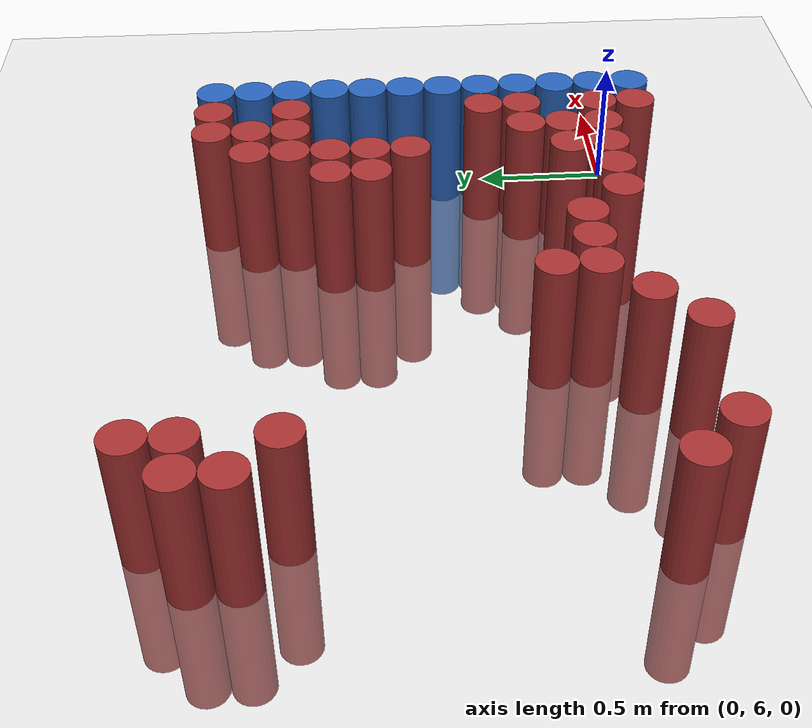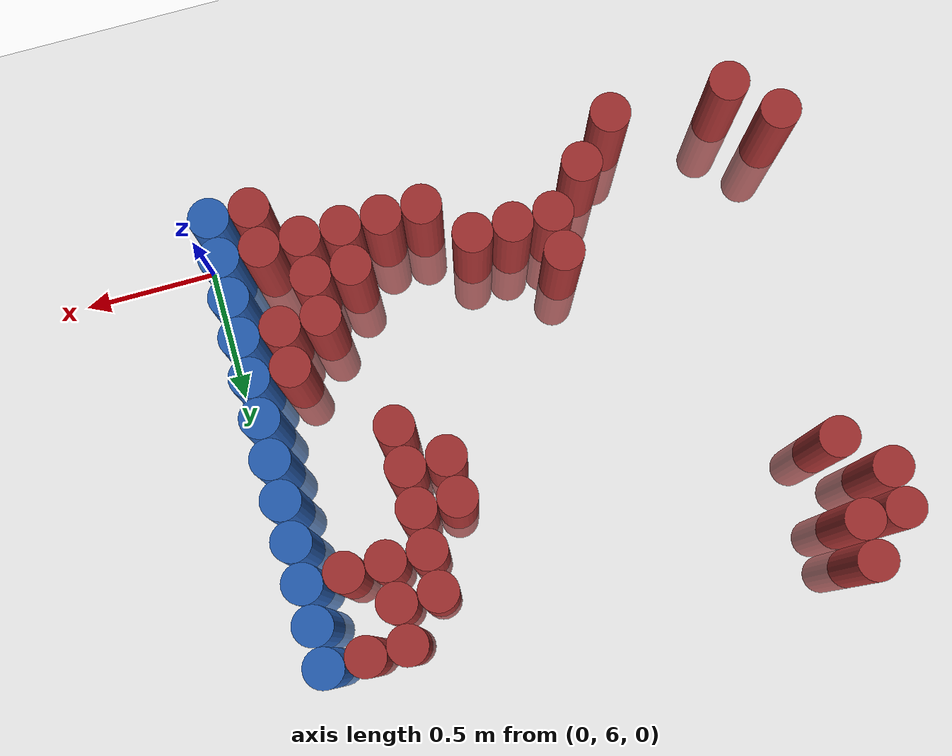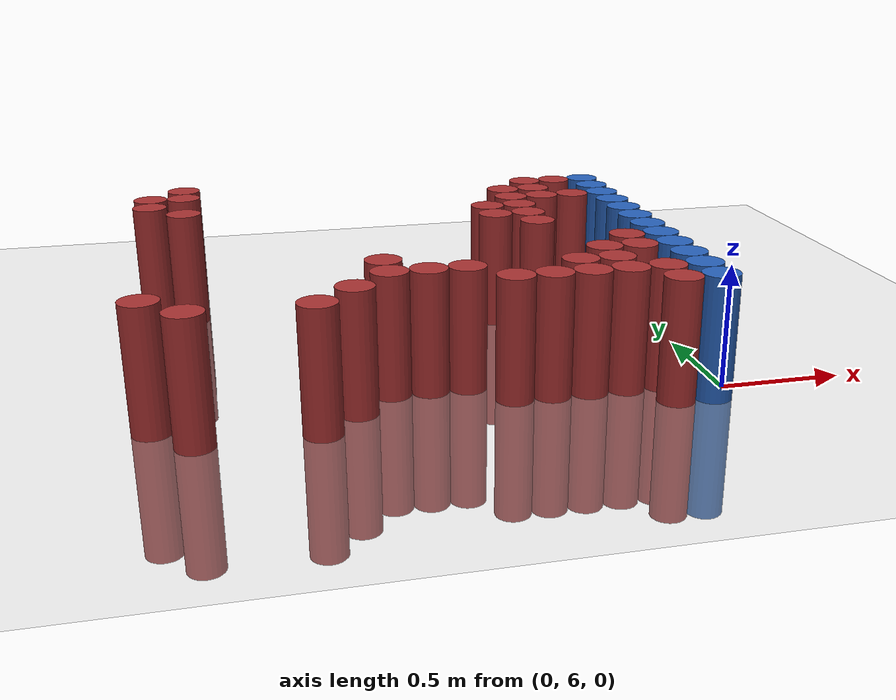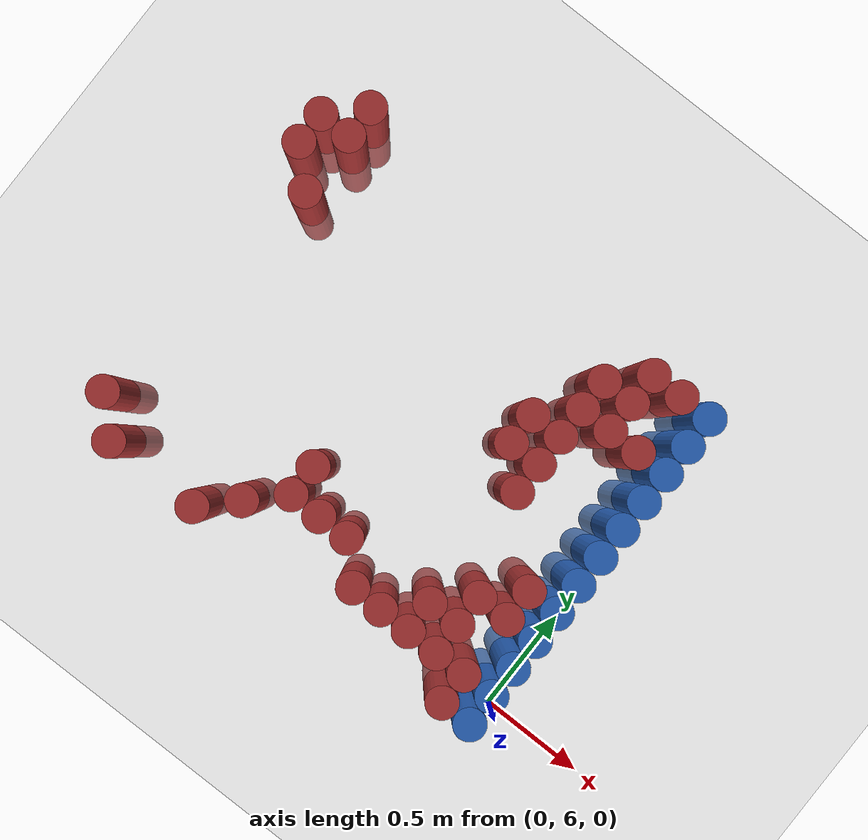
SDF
<sdf version="1.6">
 <world name="default">
  <model name="ground_plane">
   <static>1</static>
   <link name="link">
    <collision name="collision">
     <geometry><plane><normal>0 0 1</normal><size>100 100</size></plane></geometry>
     <surface><friction><ode><mu>100</mu><mu2>50</mu2></ode></friction></surface>
    </collision>
    <visual name="visual">
     <cast_shadows>0</cast_shadows>
     <geometry><plane><normal>0 0 1</normal><size>100 100</size></plane></geometry>
     <material>
      <script><uri>file://media/materials/scripts/gazebo.material</uri><name>Gazebo/Grey</name></script>
     </material>
    </visual>
   </link>
  </model>
  <model name="unit_cylinder_217">
   <static>1</static>
   <pose>-2.175000 6.075000 0.000000 0.000000 0.000000 0.000000</pose>
   <link name="link">
    <inertial>
     <mass>1</mass>
     <inertia><ixx>0.145833</ixx><ixy>0</ixy><ixz>0</ixz><iyy>0.145833</iyy><iyz>0</iyz><izz>0.125</izz></inertia>
    </inertial>
    <collision name="collision">
     <geometry><cylinder><radius>0.075000</radius><length>1</length></cylinder></geometry>
    </collision>
    <visual name="visual">
     <geometry><cylinder><radius>0.075000</radius><length>1</length></cylinder></geometry>
     <material>
      <ambient>0.648000 0.192000 0.192000 1</ambient>
      <diffuse>0.648000 0.192000 0.192000 1</diffuse>
     </material>
     <material>
      <script><name>Gazebo/Grey</name><uri>file://media/materials/scripts/gazebo.material</uri></script>
     </material>
    </visual>
   </link>
  </model>
  <model name="unit_cylinder_218">
   <static>1</static>
   <pose>-2.175000 7.425000 0.000000 0.000000 0.000000 0.000000</pose>
   <link name="link">
    <inertial>
     <mass>1</mass>
     <inertia><ixx>0.145833</ixx><ixy>0</ixy><ixz>0</ixz><iyy>0.145833</iyy><iyz>0</iyz><izz>0.125</izz></inertia>
    </inertial>
    <collision name="collision">
     <geometry><cylinder><radius>0.075000</radius><length>1</length></cylinder></geometry>
    </collision>
    <visual name="visual">
     <geometry><cylinder><radius>0.075000</radius><length>1</length></cylinder></geometry>
     <material>
      <ambient>0.648000 0.192000 0.192000 1</ambient>
      <diffuse>0.648000 0.192000 0.192000 1</diffuse>
     </material>
     <material>
      <script><name>Gazebo/Grey</name><uri>file://media/materials/scripts/gazebo.material</uri></script>
     </material>
    </visual>
   </link>
  </model>
  <model name="unit_cylinder_219">
   <static>1</static>
   <pose>-2.175000 7.575000 0.000000 0.000000 0.000000 0.000000</pose>
   <link name="link">
    <inertial>
     <mass>1</mass>
     <inertia><ixx>0.145833</ixx><ixy>0</ixy><ixz>0</ixz><iyy>0.145833</iyy><iyz>0</iyz><izz>0.125</izz></inertia>
    </inertial>
    <collision name="collision">
     <geometry><cylinder><radius>0.075000</radius><length>1</length></cylinder></geometry>
    </collision>
    <visual name="visual">
     <geometry><cylinder><radius>0.075000</radius><length>1</length></cylinder></geometry>
     <material>
      <ambient>0.648000 0.192000 0.192000 1</ambient>
      <diffuse>0.648000 0.192000 0.192000 1</diffuse>
     </material>
     <material>
      <script><name>Gazebo/Grey</name><uri>file://media/materials/scripts/gazebo.material</uri></script>
     </material>
    </visual>
   </link>
  </model>
  <model name="unit_cylinder_230">
   <static>1</static>
   <pose>-2.025000 5.925000 0.000000 0.000000 0.000000 0.000000</pose>
   <link name="link">
    <inertial>
     <mass>1</mass>
     <inertia><ixx>0.145833</ixx><ixy>0</ixy><ixz>0</ixz><iyy>0.145833</iyy><iyz>0</iyz><izz>0.125</izz></inertia>
    </inertial>
    <collision name="collision">
     <geometry><cylinder><radius>0.075000</radius><length>1</length></cylinder></geometry>
    </collision>
    <visual name="visual">
     <geometry><cylinder><radius>0.075000</radius><length>1</length></cylinder></geometry>
     <material>
      <ambient>0.648000 0.192000 0.192000 1</ambient>
      <diffuse>0.648000 0.192000 0.192000 1</diffuse>
     </material>
     <material>
      <script><name>Gazebo/Grey</name><uri>file://media/materials/scripts/gazebo.material</uri></script>
     </material>
    </visual>
   </link>
  </model>
  <model name="unit_cylinder_231">
   <static>1</static>
   <pose>-2.025000 7.275000 0.000000 0.000000 0.000000 0.000000</pose>
   <link name="link">
    <inertial>
     <mass>1</mass>
     <inertia><ixx>0.145833</ixx><ixy>0</ixy><ixz>0</ixz><iyy>0.145833</iyy><iyz>0</iyz><izz>0.125</izz></inertia>
    </inertial>
    <collision name="collision">
     <geometry><cylinder><radius>0.075000</radius><length>1</length></cylinder></geometry>
    </collision>
    <visual name="visual">
     <geometry><cylinder><radius>0.075000</radius><length>1</length></cylinder></geometry>
     <material>
      <ambient>0.648000 0.192000 0.192000 1</ambient>
      <diffuse>0.648000 0.192000 0.192000 1</diffuse>
     </material>
     <material>
      <script><name>Gazebo/Grey</name><uri>file://media/materials/scripts/gazebo.material</uri></script>
     </material>
    </visual>
   </link>
  </model>
  <model name="unit_cylinder_232">
   <static>1</static>
   <pose>-2.025000 7.575000 0.000000 0.000000 0.000000 0.000000</pose>
   <link name="link">
    <inertial>
     <mass>1</mass>
     <inertia><ixx>0.145833</ixx><ixy>0</ixy><ixz>0</ixz><iyy>0.145833</iyy><iyz>0</iyz><izz>0.125</izz></inertia>
    </inertial>
    <collision name="collision">
     <geometry><cylinder><radius>0.075000</radius><length>1</length></cylinder></geometry>
    </collision>
    <visual name="visual">
     <geometry><cylinder><radius>0.075000</radius><length>1</length></cylinder></geometry>
     <material>
      <ambient>0.648000 0.192000 0.192000 1</ambient>
      <diffuse>0.648000 0.192000 0.192000 1</diffuse>
     </material>
     <material>
      <script><name>Gazebo/Grey</name><uri>file://media/materials/scripts/gazebo.material</uri></script>
     </material>
    </visual>
   </link>
  </model>
  <model name="unit_cylinder_233">
   <static>1</static>
   <pose>-2.025000 7.725000 0.000000 0.000000 0.000000 0.000000</pose>
   <link name="link">
    <inertial>
     <mass>1</mass>
     <inertia><ixx>0.145833</ixx><ixy>0</ixy><ixz>0</ixz><iyy>0.145833</iyy><iyz>0</iyz><izz>0.125</izz></inertia>
    </inertial>
    <collision name="collision">
     <geometry><cylinder><radius>0.075000</radius><length>1</length></cylinder></geometry>
    </collision>
    <visual name="visual">
     <geometry><cylinder><radius>0.075000</radius><length>1</length></cylinder></geometry>
     <material>
      <ambient>0.648000 0.192000 0.192000 1</ambient>
      <diffuse>0.648000 0.192000 0.192000 1</diffuse>
     </material>
     <material>
      <script><name>Gazebo/Grey</name><uri>file://media/materials/scripts/gazebo.material</uri></script>
     </material>
    </visual>
   </link>
  </model>
  <model name="unit_cylinder_246">
   <static>1</static>
   <pose>-1.575000 5.925000 0.000000 0.000000 0.000000 0.000000</pose>
   <link name="link">
    <inertial>
     <mass>1</mass>
     <inertia><ixx>0.145833</ixx><ixy>0</ixy><ixz>0</ixz><iyy>0.145833</iyy><iyz>0</iyz><izz>0.125</izz></inertia>
    </inertial>
    <collision name="collision">
     <geometry><cylinder><radius>0.075000</radius><length>1</length></cylinder></geometry>
    </collision>
    <visual name="visual">
     <geometry><cylinder><radius>0.075000</radius><length>1</length></cylinder></geometry>
     <material>
      <ambient>0.648000 0.192000 0.192000 1</ambient>
      <diffuse>0.648000 0.192000 0.192000 1</diffuse>
     </material>
     <material>
      <script><name>Gazebo/Grey</name><uri>file://media/materials/scripts/gazebo.material</uri></script>
     </material>
    </visual>
   </link>
  </model>
  <model name="unit_cylinder_248">
   <static>1</static>
   <pose>-1.425000 6.075000 0.000000 0.000000 0.000000 0.000000</pose>
   <link name="link">
    <inertial>
     <mass>1</mass>
     <inertia><ixx>0.145833</ixx><ixy>0</ixy><ixz>0</ixz><iyy>0.145833</iyy><iyz>0</iyz><izz>0.125</izz></inertia>
    </inertial>
    <collision name="collision">
     <geometry><cylinder><radius>0.075000</radius><length>1</length></cylinder></geometry>
    </collision>
    <visual name="visual">
     <geometry><cylinder><radius>0.075000</radius><length>1</length></cylinder></geometry>
     <material>
      <ambient>0.648000 0.192000 0.192000 1</ambient>
      <diffuse>0.648000 0.192000 0.192000 1</diffuse>
     </material>
     <material>
      <script><name>Gazebo/Grey</name><uri>file://media/materials/scripts/gazebo.material</uri></script>
     </material>
    </visual>
   </link>
  </model>
  <model name="unit_cylinder_250">
   <static>1</static>
   <pose>-1.275000 6.225000 0.000000 0.000000 0.000000 0.000000</pose>
   <link name="link">
    <inertial>
     <mass>1</mass>
     <inertia><ixx>0.145833</ixx><ixy>0</ixy><ixz>0</ixz><iyy>0.145833</iyy><iyz>0</iyz><izz>0.125</izz></inertia>
    </inertial>
    <collision name="collision">
     <geometry><cylinder><radius>0.075000</radius><length>1</length></cylinder></geometry>
    </collision>
    <visual name="visual">
     <geometry><cylinder><radius>0.075000</radius><length>1</length></cylinder></geometry>
     <material>
      <ambient>0.648000 0.192000 0.192000 1</ambient>
      <diffuse>0.648000 0.192000 0.192000 1</diffuse>
     </material>
     <material>
      <script><name>Gazebo/Grey</name><uri>file://media/materials/scripts/gazebo.material</uri></script>
     </material>
    </visual>
   </link>
  </model>
  <model name="unit_cylinder_251">
   <static>1</static>
   <pose>-1.275000 6.375000 0.000000 0.000000 0.000000 0.000000</pose>
   <link name="link">
    <inertial>
     <mass>1</mass>
     <inertia><ixx>0.145833</ixx><ixy>0</ixy><ixz>0</ixz><iyy>0.145833</iyy><iyz>0</iyz><izz>0.125</izz></inertia>
    </inertial>
    <collision name="collision">
     <geometry><cylinder><radius>0.075000</radius><length>1</length></cylinder></geometry>
    </collision>
    <visual name="visual">
     <geometry><cylinder><radius>0.075000</radius><length>1</length></cylinder></geometry>
     <material>
      <ambient>0.648000 0.192000 0.192000 1</ambient>
      <diffuse>0.648000 0.192000 0.192000 1</diffuse>
     </material>
     <material>
      <script><name>Gazebo/Grey</name><uri>file://media/materials/scripts/gazebo.material</uri></script>
     </material>
    </visual>
   </link>
  </model>
  <model name="unit_cylinder_252">
   <static>1</static>
   <pose>-1.125000 6.225000 0.000000 0.000000 0.000000 0.000000</pose>
   <link name="link">
    <inertial>
     <mass>1</mass>
     <inertia><ixx>0.145833</ixx><ixy>0</ixy><ixz>0</ixz><iyy>0.145833</iyy><iyz>0</iyz><izz>0.125</izz></inertia>
    </inertial>
    <collision name="collision">
     <geometry><cylinder><radius>0.075000</radius><length>1</length></cylinder></geometry>
    </collision>
    <visual name="visual">
     <geometry><cylinder><radius>0.075000</radius><length>1</length></cylinder></geometry>
     <material>
      <ambient>0.648000 0.192000 0.192000 1</ambient>
      <diffuse>0.648000 0.192000 0.192000 1</diffuse>
     </material>
     <material>
      <script><name>Gazebo/Grey</name><uri>file://media/materials/scripts/gazebo.material</uri></script>
     </material>
    </visual>
   </link>
  </model>
  <model name="unit_cylinder_253">
   <static>1</static>
   <pose>-0.975000 6.225000 0.000000 0.000000 0.000000 0.000000</pose>
   <link name="link">
    <inertial>
     <mass>1</mass>
     <inertia><ixx>0.145833</ixx><ixy>0</ixy><ixz>0</ixz><iyy>0.145833</iyy><iyz>0</iyz><izz>0.125</izz></inertia>
    </inertial>
    <collision name="collision">
     <geometry><cylinder><radius>0.075000</radius><length>1</length></cylinder></geometry>
    </collision>
    <visual name="visual">
     <geometry><cylinder><radius>0.075000</radius><length>1</length></cylinder></geometry>
     <material>
      <ambient>0.648000 0.192000 0.192000 1</ambient>
      <diffuse>0.648000 0.192000 0.192000 1</diffuse>
     </material>
     <material>
      <script><name>Gazebo/Grey</name><uri>file://media/materials/scripts/gazebo.material</uri></script>
     </material>
    </visual>
   </link>
  </model>
  <model name="unit_cylinder_256">
   <static>1</static>
   <pose>-0.825000 6.075000 0.000000 0.000000 0.000000 0.000000</pose>
   <link name="link">
    <inertial>
     <mass>1</mass>
     <inertia><ixx>0.145833</ixx><ixy>0</ixy><ixz>0</ixz><iyy>0.145833</iyy><iyz>0</iyz><izz>0.125</izz></inertia>
    </inertial>
    <collision name="collision">
     <geometry><cylinder><radius>0.075000</radius><length>1</length></cylinder></geometry>
    </collision>
    <visual name="visual">
     <geometry><cylinder><radius>0.075000</radius><length>1</length></cylinder></geometry>
     <material>
      <ambient>0.648000 0.192000 0.192000 1</ambient>
      <diffuse>0.648000 0.192000 0.192000 1</diffuse>
     </material>
     <material>
      <script><name>Gazebo/Grey</name><uri>file://media/materials/scripts/gazebo.material</uri></script>
     </material>
    </visual>
   </link>
  </model>
  <model name="unit_cylinder_259">
   <static>1</static>
   <pose>-0.675000 6.075000 0.000000 0.000000 0.000000 0.000000</pose>
   <link name="link">
    <inertial>
     <mass>1</mass>
     <inertia><ixx>0.145833</ixx><ixy>0</ixy><ixz>0</ixz><iyy>0.145833</iyy><iyz>0</iyz><izz>0.125</izz></inertia>
    </inertial>
    <collision name="collision">
     <geometry><cylinder><radius>0.075000</radius><length>1</length></cylinder></geometry>
    </collision>
    <visual name="visual">
     <geometry><cylinder><radius>0.075000</radius><length>1</length></cylinder></geometry>
     <material>
      <ambient>0.648000 0.192000 0.192000 1</ambient>
      <diffuse>0.648000 0.192000 0.192000 1</diffuse>
     </material>
     <material>
      <script><name>Gazebo/Grey</name><uri>file://media/materials/scripts/gazebo.material</uri></script>
     </material>
    </visual>
   </link>
  </model>
  <model name="unit_cylinder_260">
   <static>1</static>
   <pose>-0.675000 6.975000 0.000000 0.000000 0.000000 0.000000</pose>
   <link name="link">
    <inertial>
     <mass>1</mass>
     <inertia><ixx>0.145833</ixx><ixy>0</ixy><ixz>0</ixz><iyy>0.145833</iyy><iyz>0</iyz><izz>0.125</izz></inertia>
    </inertial>
    <collision name="collision">
     <geometry><cylinder><radius>0.075000</radius><length>1</length></cylinder></geometry>
    </collision>
    <visual name="visual">
     <geometry><cylinder><radius>0.075000</radius><length>1</length></cylinder></geometry>
     <material>
      <ambient>0.648000 0.192000 0.192000 1</ambient>
      <diffuse>0.648000 0.192000 0.192000 1</diffuse>
     </material>
     <material>
      <script><name>Gazebo/Grey</name><uri>file://media/materials/scripts/gazebo.material</uri></script>
     </material>
    </visual>
   </link>
  </model>
  <model name="unit_cylinder_261">
   <static>1</static>
   <pose>-0.675000 7.125000 0.000000 0.000000 0.000000 0.000000</pose>
   <link name="link">
    <inertial>
     <mass>1</mass>
     <inertia><ixx>0.145833</ixx><ixy>0</ixy><ixz>0</ixz><iyy>0.145833</iyy><iyz>0</iyz><izz>0.125</izz></inertia>
    </inertial>
    <collision name="collision">
     <geometry><cylinder><radius>0.075000</radius><length>1</length></cylinder></geometry>
    </collision>
    <visual name="visual">
     <geometry><cylinder><radius>0.075000</radius><length>1</length></cylinder></geometry>
     <material>
      <ambient>0.648000 0.192000 0.192000 1</ambient>
      <diffuse>0.648000 0.192000 0.192000 1</diffuse>
     </material>
     <material>
      <script><name>Gazebo/Grey</name><uri>file://media/materials/scripts/gazebo.material</uri></script>
     </material>
    </visual>
   </link>
  </model>
  <model name="unit_cylinder_267">
   <static>1</static>
   <pose>-0.525000 6.075000 0.000000 0.000000 0.000000 0.000000</pose>
   <link name="link">
    <inertial>
     <mass>1</mass>
     <inertia><ixx>0.145833</ixx><ixy>0</ixy><ixz>0</ixz><iyy>0.145833</iyy><iyz>0</iyz><izz>0.125</izz></inertia>
    </inertial>
    <collision name="collision">
     <geometry><cylinder><radius>0.075000</radius><length>1</length></cylinder></geometry>
    </collision>
    <visual name="visual">
     <geometry><cylinder><radius>0.075000</radius><length>1</length></cylinder></geometry>
     <material>
      <ambient>0.648000 0.192000 0.192000 1</ambient>
      <diffuse>0.648000 0.192000 0.192000 1</diffuse>
     </material>
     <material>
      <script><name>Gazebo/Grey</name><uri>file://media/materials/scripts/gazebo.material</uri></script>
     </material>
    </visual>
   </link>
  </model>
  <model name="unit_cylinder_268">
   <static>1</static>
   <pose>-0.525000 6.225000 0.000000 0.000000 0.000000 0.000000</pose>
   <link name="link">
    <inertial>
     <mass>1</mass>
     <inertia><ixx>0.145833</ixx><ixy>0</ixy><ixz>0</ixz><iyy>0.145833</iyy><iyz>0</iyz><izz>0.125</izz></inertia>
    </inertial>
    <collision name="collision">
     <geometry><cylinder><radius>0.075000</radius><length>1</length></cylinder></geometry>
    </collision>
    <visual name="visual">
     <geometry><cylinder><radius>0.075000</radius><length>1</length></cylinder></geometry>
     <material>
      <ambient>0.648000 0.192000 0.192000 1</ambient>
      <diffuse>0.648000 0.192000 0.192000 1</diffuse>
     </material>
     <material>
      <script><name>Gazebo/Grey</name><uri>file://media/materials/scripts/gazebo.material</uri></script>
     </material>
    </visual>
   </link>
  </model>
  <model name="unit_cylinder_269">
   <static>1</static>
   <pose>-0.525000 6.825000 0.000000 0.000000 0.000000 0.000000</pose>
   <link name="link">
    <inertial>
     <mass>1</mass>
     <inertia><ixx>0.145833</ixx><ixy>0</ixy><ixz>0</ixz><iyy>0.145833</iyy><iyz>0</iyz><izz>0.125</izz></inertia>
    </inertial>
    <collision name="collision">
     <geometry><cylinder><radius>0.075000</radius><length>1</length></cylinder></geometry>
    </collision>
    <visual name="visual">
     <geometry><cylinder><radius>0.075000</radius><length>1</length></cylinder></geometry>
     <material>
      <ambient>0.648000 0.192000 0.192000 1</ambient>
      <diffuse>0.648000 0.192000 0.192000 1</diffuse>
     </material>
     <material>
      <script><name>Gazebo/Grey</name><uri>file://media/materials/scripts/gazebo.material</uri></script>
     </material>
    </visual>
   </link>
  </model>
  <model name="unit_cylinder_270">
   <static>1</static>
   <pose>-0.525000 6.975000 0.000000 0.000000 0.000000 0.000000</pose>
   <link name="link">
    <inertial>
     <mass>1</mass>
     <inertia><ixx>0.145833</ixx><ixy>0</ixy><ixz>0</ixz><iyy>0.145833</iyy><iyz>0</iyz><izz>0.125</izz></inertia>
    </inertial>
    <collision name="collision">
     <geometry><cylinder><radius>0.075000</radius><length>1</length></cylinder></geometry>
    </collision>
    <visual name="visual">
     <geometry><cylinder><radius>0.075000</radius><length>1</length></cylinder></geometry>
     <material>
      <ambient>0.648000 0.192000 0.192000 1</ambient>
      <diffuse>0.648000 0.192000 0.192000 1</diffuse>
     </material>
     <material>
      <script><name>Gazebo/Grey</name><uri>file://media/materials/scripts/gazebo.material</uri></script>
     </material>
    </visual>
   </link>
  </model>
  <model name="unit_cylinder_271">
   <static>1</static>
   <pose>-0.525000 7.125000 0.000000 0.000000 0.000000 0.000000</pose>
   <link name="link">
    <inertial>
     <mass>1</mass>
     <inertia><ixx>0.145833</ixx><ixy>0</ixy><ixz>0</ixz><iyy>0.145833</iyy><iyz>0</iyz><izz>0.125</izz></inertia>
    </inertial>
    <collision name="collision">
     <geometry><cylinder><radius>0.075000</radius><length>1</length></cylinder></geometry>
    </collision>
    <visual name="visual">
     <geometry><cylinder><radius>0.075000</radius><length>1</length></cylinder></geometry>
     <material>
      <ambient>0.648000 0.192000 0.192000 1</ambient>
      <diffuse>0.648000 0.192000 0.192000 1</diffuse>
     </material>
     <material>
      <script><name>Gazebo/Grey</name><uri>file://media/materials/scripts/gazebo.material</uri></script>
     </material>
    </visual>
   </link>
  </model>
  <model name="unit_cylinder_272">
   <static>1</static>
   <pose>-0.525000 7.275000 0.000000 0.000000 0.000000 0.000000</pose>
   <link name="link">
    <inertial>
     <mass>1</mass>
     <inertia><ixx>0.145833</ixx><ixy>0</ixy><ixz>0</ixz><iyy>0.145833</iyy><iyz>0</iyz><izz>0.125</izz></inertia>
    </inertial>
    <collision name="collision">
     <geometry><cylinder><radius>0.075000</radius><length>1</length></cylinder></geometry>
    </collision>
    <visual name="visual">
     <geometry><cylinder><radius>0.075000</radius><length>1</length></cylinder></geometry>
     <material>
      <ambient>0.648000 0.192000 0.192000 1</ambient>
      <diffuse>0.648000 0.192000 0.192000 1</diffuse>
     </material>
     <material>
      <script><name>Gazebo/Grey</name><uri>file://media/materials/scripts/gazebo.material</uri></script>
     </material>
    </visual>
   </link>
  </model>
  <model name="unit_cylinder_273">
   <static>1</static>
   <pose>-0.525000 7.425000 0.000000 0.000000 0.000000 0.000000</pose>
   <link name="link">
    <inertial>
     <mass>1</mass>
     <inertia><ixx>0.145833</ixx><ixy>0</ixy><ixz>0</ixz><iyy>0.145833</iyy><iyz>0</iyz><izz>0.125</izz></inertia>
    </inertial>
    <collision name="collision">
     <geometry><cylinder><radius>0.075000</radius><length>1</length></cylinder></geometry>
    </collision>
    <visual name="visual">
     <geometry><cylinder><radius>0.075000</radius><length>1</length></cylinder></geometry>
     <material>
      <ambient>0.648000 0.192000 0.192000 1</ambient>
      <diffuse>0.648000 0.192000 0.192000 1</diffuse>
     </material>
     <material>
      <script><name>Gazebo/Grey</name><uri>file://media/materials/scripts/gazebo.material</uri></script>
     </material>
    </visual>
   </link>
  </model>
  <model name="unit_cylinder_280">
   <static>1</static>
   <pose>-0.375000 6.075000 0.000000 0.000000 0.000000 0.000000</pose>
   <link name="link">
    <inertial>
     <mass>1</mass>
     <inertia><ixx>0.145833</ixx><ixy>0</ixy><ixz>0</ixz><iyy>0.145833</iyy><iyz>0</iyz><izz>0.125</izz></inertia>
    </inertial>
    <collision name="collision">
     <geometry><cylinder><radius>0.075000</radius><length>1</length></cylinder></geometry>
    </collision>
    <visual name="visual">
     <geometry><cylinder><radius>0.075000</radius><length>1</length></cylinder></geometry>
     <material>
      <ambient>0.648000 0.192000 0.192000 1</ambient>
      <diffuse>0.648000 0.192000 0.192000 1</diffuse>
     </material>
     <material>
      <script><name>Gazebo/Grey</name><uri>file://media/materials/scripts/gazebo.material</uri></script>
     </material>
    </visual>
   </link>
  </model>
  <model name="unit_cylinder_281">
   <static>1</static>
   <pose>-0.375000 6.225000 0.000000 0.000000 0.000000 0.000000</pose>
   <link name="link">
    <inertial>
     <mass>1</mass>
     <inertia><ixx>0.145833</ixx><ixy>0</ixy><ixz>0</ixz><iyy>0.145833</iyy><iyz>0</iyz><izz>0.125</izz></inertia>
    </inertial>
    <collision name="collision">
     <geometry><cylinder><radius>0.075000</radius><length>1</length></cylinder></geometry>
    </collision>
    <visual name="visual">
     <geometry><cylinder><radius>0.075000</radius><length>1</length></cylinder></geometry>
     <material>
      <ambient>0.648000 0.192000 0.192000 1</ambient>
      <diffuse>0.648000 0.192000 0.192000 1</diffuse>
     </material>
     <material>
      <script><name>Gazebo/Grey</name><uri>file://media/materials/scripts/gazebo.material</uri></script>
     </material>
    </visual>
   </link>
  </model>
  <model name="unit_cylinder_282">
   <static>1</static>
   <pose>-0.375000 6.375000 0.000000 0.000000 0.000000 0.000000</pose>
   <link name="link">
    <inertial>
     <mass>1</mass>
     <inertia><ixx>0.145833</ixx><ixy>0</ixy><ixz>0</ixz><iyy>0.145833</iyy><iyz>0</iyz><izz>0.125</izz></inertia>
    </inertial>
    <collision name="collision">
     <geometry><cylinder><radius>0.075000</radius><length>1</length></cylinder></geometry>
    </collision>
    <visual name="visual">
     <geometry><cylinder><radius>0.075000</radius><length>1</length></cylinder></geometry>
     <material>
      <ambient>0.648000 0.192000 0.192000 1</ambient>
      <diffuse>0.648000 0.192000 0.192000 1</diffuse>
     </material>
     <material>
      <script><name>Gazebo/Grey</name><uri>file://media/materials/scripts/gazebo.material</uri></script>
     </material>
    </visual>
   </link>
  </model>
  <model name="unit_cylinder_283">
   <static>1</static>
   <pose>-0.375000 7.275000 0.000000 0.000000 0.000000 0.000000</pose>
   <link name="link">
    <inertial>
     <mass>1</mass>
     <inertia><ixx>0.145833</ixx><ixy>0</ixy><ixz>0</ixz><iyy>0.145833</iyy><iyz>0</iyz><izz>0.125</izz></inertia>
    </inertial>
    <collision name="collision">
     <geometry><cylinder><radius>0.075000</radius><length>1</length></cylinder></geometry>
    </collision>
    <visual name="visual">
     <geometry><cylinder><radius>0.075000</radius><length>1</length></cylinder></geometry>
     <material>
      <ambient>0.648000 0.192000 0.192000 1</ambient>
      <diffuse>0.648000 0.192000 0.192000 1</diffuse>
     </material>
     <material>
      <script><name>Gazebo/Grey</name><uri>file://media/materials/scripts/gazebo.material</uri></script>
     </material>
    </visual>
   </link>
  </model>
  <model name="unit_cylinder_284">
   <static>1</static>
   <pose>-0.375000 7.425000 0.000000 0.000000 0.000000 0.000000</pose>
   <link name="link">
    <inertial>
     <mass>1</mass>
     <inertia><ixx>0.145833</ixx><ixy>0</ixy><ixz>0</ixz><iyy>0.145833</iyy><iyz>0</iyz><izz>0.125</izz></inertia>
    </inertial>
    <collision name="collision">
     <geometry><cylinder><radius>0.075000</radius><length>1</length></cylinder></geometry>
    </collision>
    <visual name="visual">
     <geometry><cylinder><radius>0.075000</radius><length>1</length></cylinder></geometry>
     <material>
      <ambient>0.648000 0.192000 0.192000 1</ambient>
      <diffuse>0.648000 0.192000 0.192000 1</diffuse>
     </material>
     <material>
      <script><name>Gazebo/Grey</name><uri>file://media/materials/scripts/gazebo.material</uri></script>
     </material>
    </visual>
   </link>
  </model>
  <model name="unit_cylinder_285">
   <static>1</static>
   <pose>-0.375000 7.575000 0.000000 0.000000 0.000000 0.000000</pose>
   <link name="link">
    <inertial>
     <mass>1</mass>
     <inertia><ixx>0.145833</ixx><ixy>0</ixy><ixz>0</ixz><iyy>0.145833</iyy><iyz>0</iyz><izz>0.125</izz></inertia>
    </inertial>
    <collision name="collision">
     <geometry><cylinder><radius>0.075000</radius><length>1</length></cylinder></geometry>
    </collision>
    <visual name="visual">
     <geometry><cylinder><radius>0.075000</radius><length>1</length></cylinder></geometry>
     <material>
      <ambient>0.648000 0.192000 0.192000 1</ambient>
      <diffuse>0.648000 0.192000 0.192000 1</diffuse>
     </material>
     <material>
      <script><name>Gazebo/Grey</name><uri>file://media/materials/scripts/gazebo.material</uri></script>
     </material>
    </visual>
   </link>
  </model>
  <model name="unit_cylinder_295">
   <static>1</static>
   <pose>-0.225000 5.925000 0.000000 0.000000 0.000000 0.000000</pose>
   <link name="link">
    <inertial>
     <mass>1</mass>
     <inertia><ixx>0.145833</ixx><ixy>0</ixy><ixz>0</ixz><iyy>0.145833</iyy><iyz>0</iyz><izz>0.125</izz></inertia>
    </inertial>
    <collision name="collision">
     <geometry><cylinder><radius>0.075000</radius><length>1</length></cylinder></geometry>
    </collision>
    <visual name="visual">
     <geometry><cylinder><radius>0.075000</radius><length>1</length></cylinder></geometry>
     <material>
      <ambient>0.648000 0.192000 0.192000 1</ambient>
      <diffuse>0.648000 0.192000 0.192000 1</diffuse>
     </material>
     <material>
      <script><name>Gazebo/Grey</name><uri>file://media/materials/scripts/gazebo.material</uri></script>
     </material>
    </visual>
   </link>
  </model>
  <model name="unit_cylinder_296">
   <static>1</static>
   <pose>-0.225000 6.075000 0.000000 0.000000 0.000000 0.000000</pose>
   <link name="link">
    <inertial>
     <mass>1</mass>
     <inertia><ixx>0.145833</ixx><ixy>0</ixy><ixz>0</ixz><iyy>0.145833</iyy><iyz>0</iyz><izz>0.125</izz></inertia>
    </inertial>
    <collision name="collision">
     <geometry><cylinder><radius>0.075000</radius><length>1</length></cylinder></geometry>
    </collision>
    <visual name="visual">
     <geometry><cylinder><radius>0.075000</radius><length>1</length></cylinder></geometry>
     <material>
      <ambient>0.648000 0.192000 0.192000 1</ambient>
      <diffuse>0.648000 0.192000 0.192000 1</diffuse>
     </material>
     <material>
      <script><name>Gazebo/Grey</name><uri>file://media/materials/scripts/gazebo.material</uri></script>
     </material>
    </visual>
   </link>
  </model>
  <model name="unit_cylinder_297">
   <static>1</static>
   <pose>-0.225000 6.375000 0.000000 0.000000 0.000000 0.000000</pose>
   <link name="link">
    <inertial>
     <mass>1</mass>
     <inertia><ixx>0.145833</ixx><ixy>0</ixy><ixz>0</ixz><iyy>0.145833</iyy><iyz>0</iyz><izz>0.125</izz></inertia>
    </inertial>
    <collision name="collision">
     <geometry><cylinder><radius>0.075000</radius><length>1</length></cylinder></geometry>
    </collision>
    <visual name="visual">
     <geometry><cylinder><radius>0.075000</radius><length>1</length></cylinder></geometry>
     <material>
      <ambient>0.648000 0.192000 0.192000 1</ambient>
      <diffuse>0.648000 0.192000 0.192000 1</diffuse>
     </material>
     <material>
      <script><name>Gazebo/Grey</name><uri>file://media/materials/scripts/gazebo.material</uri></script>
     </material>
    </visual>
   </link>
  </model>
  <model name="unit_cylinder_298">
   <static>1</static>
   <pose>-0.225000 6.525000 0.000000 0.000000 0.000000 0.000000</pose>
   <link name="link">
    <inertial>
     <mass>1</mass>
     <inertia><ixx>0.145833</ixx><ixy>0</ixy><ixz>0</ixz><iyy>0.145833</iyy><iyz>0</iyz><izz>0.125</izz></inertia>
    </inertial>
    <collision name="collision">
     <geometry><cylinder><radius>0.075000</radius><length>1</length></cylinder></geometry>
    </collision>
    <visual name="visual">
     <geometry><cylinder><radius>0.075000</radius><length>1</length></cylinder></geometry>
     <material>
      <ambient>0.648000 0.192000 0.192000 1</ambient>
      <diffuse>0.648000 0.192000 0.192000 1</diffuse>
     </material>
     <material>
      <script><name>Gazebo/Grey</name><uri>file://media/materials/scripts/gazebo.material</uri></script>
     </material>
    </visual>
   </link>
  </model>
  <model name="unit_cylinder_299">
   <static>1</static>
   <pose>-0.225000 7.275000 0.000000 0.000000 0.000000 0.000000</pose>
   <link name="link">
    <inertial>
     <mass>1</mass>
     <inertia><ixx>0.145833</ixx><ixy>0</ixy><ixz>0</ixz><iyy>0.145833</iyy><iyz>0</iyz><izz>0.125</izz></inertia>
    </inertial>
    <collision name="collision">
     <geometry><cylinder><radius>0.075000</radius><length>1</length></cylinder></geometry>
    </collision>
    <visual name="visual">
     <geometry><cylinder><radius>0.075000</radius><length>1</length></cylinder></geometry>
     <material>
      <ambient>0.648000 0.192000 0.192000 1</ambient>
      <diffuse>0.648000 0.192000 0.192000 1</diffuse>
     </material>
     <material>
      <script><name>Gazebo/Grey</name><uri>file://media/materials/scripts/gazebo.material</uri></script>
     </material>
    </visual>
   </link>
  </model>
  <model name="unit_cylinder_300">
   <static>1</static>
   <pose>-0.225000 7.575000 0.000000 0.000000 0.000000 0.000000</pose>
   <link name="link">
    <inertial>
     <mass>1</mass>
     <inertia><ixx>0.145833</ixx><ixy>0</ixy><ixz>0</ixz><iyy>0.145833</iyy><iyz>0</iyz><izz>0.125</izz></inertia>
    </inertial>
    <collision name="collision">
     <geometry><cylinder><radius>0.075000</radius><length>1</length></cylinder></geometry>
    </collision>
    <visual name="visual">
     <geometry><cylinder><radius>0.075000</radius><length>1</length></cylinder></geometry>
     <material>
      <ambient>0.648000 0.192000 0.192000 1</ambient>
      <diffuse>0.648000 0.192000 0.192000 1</diffuse>
     </material>
     <material>
      <script><name>Gazebo/Grey</name><uri>file://media/materials/scripts/gazebo.material</uri></script>
     </material>
    </visual>
   </link>
  </model>
  <model name="unit_cylinder_314">
   <static>1</static>
   <pose>-0.075000 5.925000 0.000000 0.000000 0.000000 0.000000</pose>
   <link name="link">
    <inertial>
     <mass>1</mass>
     <inertia><ixx>0.145833</ixx><ixy>0</ixy><ixz>0</ixz><iyy>0.145833</iyy><iyz>0</iyz><izz>0.125</izz></inertia>
    </inertial>
    <collision name="collision">
     <geometry><cylinder><radius>0.075000</radius><length>1</length></cylinder></geometry>
    </collision>
    <visual name="visual">
     <geometry><cylinder><radius>0.075000</radius><length>1</length></cylinder></geometry>
     <material>
      <ambient>0.152000 0.379000 0.720000 1</ambient>
      <diffuse>0.152000 0.379000 0.720000 1</diffuse>
     </material>
     <material>
      <script><name>Gazebo/Grey</name><uri>file://media/materials/scripts/gazebo.material</uri></script>
     </material>
    </visual>
   </link>
  </model>
  <model name="unit_cylinder_315">
   <static>1</static>
   <pose>-0.075000 6.075000 0.000000 0.000000 0.000000 0.000000</pose>
   <link name="link">
    <inertial>
     <mass>1</mass>
     <inertia><ixx>0.145833</ixx><ixy>0</ixy><ixz>0</ixz><iyy>0.145833</iyy><iyz>0</iyz><izz>0.125</izz></inertia>
    </inertial>
    <collision name="collision">
     <geometry><cylinder><radius>0.075000</radius><length>1</length></cylinder></geometry>
    </collision>
    <visual name="visual">
     <geometry><cylinder><radius>0.075000</radius><length>1</length></cylinder></geometry>
     <material>
      <ambient>0.152000 0.379000 0.720000 1</ambient>
      <diffuse>0.152000 0.379000 0.720000 1</diffuse>
     </material>
     <material>
      <script><name>Gazebo/Grey</name><uri>file://media/materials/scripts/gazebo.material</uri></script>
     </material>
    </visual>
   </link>
  </model>
  <model name="unit_cylinder_316">
   <static>1</static>
   <pose>-0.075000 6.225000 0.000000 0.000000 0.000000 0.000000</pose>
   <link name="link">
    <inertial>
     <mass>1</mass>
     <inertia><ixx>0.145833</ixx><ixy>0</ixy><ixz>0</ixz><iyy>0.145833</iyy><iyz>0</iyz><izz>0.125</izz></inertia>
    </inertial>
    <collision name="collision">
     <geometry><cylinder><radius>0.075000</radius><length>1</length></cylinder></geometry>
    </collision>
    <visual name="visual">
     <geometry><cylinder><radius>0.075000</radius><length>1</length></cylinder></geometry>
     <material>
      <ambient>0.152000 0.379000 0.720000 1</ambient>
      <diffuse>0.152000 0.379000 0.720000 1</diffuse>
     </material>
     <material>
      <script><name>Gazebo/Grey</name><uri>file://media/materials/scripts/gazebo.material</uri></script>
     </material>
    </visual>
   </link>
  </model>
  <model name="unit_cylinder_317">
   <static>1</static>
   <pose>-0.075000 6.375000 0.000000 0.000000 0.000000 0.000000</pose>
   <link name="link">
    <inertial>
     <mass>1</mass>
     <inertia><ixx>0.145833</ixx><ixy>0</ixy><ixz>0</ixz><iyy>0.145833</iyy><iyz>0</iyz><izz>0.125</izz></inertia>
    </inertial>
    <collision name="collision">
     <geometry><cylinder><radius>0.075000</radius><length>1</length></cylinder></geometry>
    </collision>
    <visual name="visual">
     <geometry><cylinder><radius>0.075000</radius><length>1</length></cylinder></geometry>
     <material>
      <ambient>0.152000 0.379000 0.720000 1</ambient>
      <diffuse>0.152000 0.379000 0.720000 1</diffuse>
     </material>
     <material>
      <script><name>Gazebo/Grey</name><uri>file://media/materials/scripts/gazebo.material</uri></script>
     </material>
    </visual>
   </link>
  </model>
  <model name="unit_cylinder_318">
   <static>1</static>
   <pose>-0.075000 6.525000 0.000000 0.000000 0.000000 0.000000</pose>
   <link name="link">
    <inertial>
     <mass>1</mass>
     <inertia><ixx>0.145833</ixx><ixy>0</ixy><ixz>0</ixz><iyy>0.145833</iyy><iyz>0</iyz><izz>0.125</izz></inertia>
    </inertial>
    <collision name="collision">
     <geometry><cylinder><radius>0.075000</radius><length>1</length></cylinder></geometry>
    </collision>
    <visual name="visual">
     <geometry><cylinder><radius>0.075000</radius><length>1</length></cylinder></geometry>
     <material>
      <ambient>0.152000 0.379000 0.720000 1</ambient>
      <diffuse>0.152000 0.379000 0.720000 1</diffuse>
     </material>
     <material>
      <script><name>Gazebo/Grey</name><uri>file://media/materials/scripts/gazebo.material</uri></script>
     </material>
    </visual>
   </link>
  </model>
  <model name="unit_cylinder_319">
   <static>1</static>
   <pose>-0.075000 6.675000 0.000000 0.000000 0.000000 0.000000</pose>
   <link name="link">
    <inertial>
     <mass>1</mass>
     <inertia><ixx>0.145833</ixx><ixy>0</ixy><ixz>0</ixz><iyy>0.145833</iyy><iyz>0</iyz><izz>0.125</izz></inertia>
    </inertial>
    <collision name="collision">
     <geometry><cylinder><radius>0.075000</radius><length>1</length></cylinder></geometry>
    </collision>
    <visual name="visual">
     <geometry><cylinder><radius>0.075000</radius><length>1</length></cylinder></geometry>
     <material>
      <ambient>0.152000 0.379000 0.720000 1</ambient>
      <diffuse>0.152000 0.379000 0.720000 1</diffuse>
     </material>
     <material>
      <script><name>Gazebo/Grey</name><uri>file://media/materials/scripts/gazebo.material</uri></script>
     </material>
    </visual>
   </link>
  </model>
  <model name="unit_cylinder_320">
   <static>1</static>
   <pose>-0.075000 6.825000 0.000000 0.000000 0.000000 0.000000</pose>
   <link name="link">
    <inertial>
     <mass>1</mass>
     <inertia><ixx>0.145833</ixx><ixy>0</ixy><ixz>0</ixz><iyy>0.145833</iyy><iyz>0</iyz><izz>0.125</izz></inertia>
    </inertial>
    <collision name="collision">
     <geometry><cylinder><radius>0.075000</radius><length>1</length></cylinder></geometry>
    </collision>
    <visual name="visual">
     <geometry><cylinder><radius>0.075000</radius><length>1</length></cylinder></geometry>
     <material>
      <ambient>0.152000 0.379000 0.720000 1</ambient>
      <diffuse>0.152000 0.379000 0.720000 1</diffuse>
     </material>
     <material>
      <script><name>Gazebo/Grey</name><uri>file://media/materials/scripts/gazebo.material</uri></script>
     </material>
    </visual>
   </link>
  </model>
  <model name="unit_cylinder_321">
   <static>1</static>
   <pose>-0.075000 6.975000 0.000000 0.000000 0.000000 0.000000</pose>
   <link name="link">
    <inertial>
     <mass>1</mass>
     <inertia><ixx>0.145833</ixx><ixy>0</ixy><ixz>0</ixz><iyy>0.145833</iyy><iyz>0</iyz><izz>0.125</izz></inertia>
    </inertial>
    <collision name="collision">
     <geometry><cylinder><radius>0.075000</radius><length>1</length></cylinder></geometry>
    </collision>
    <visual name="visual">
     <geometry><cylinder><radius>0.075000</radius><length>1</length></cylinder></geometry>
     <material>
      <ambient>0.152000 0.379000 0.720000 1</ambient>
      <diffuse>0.152000 0.379000 0.720000 1</diffuse>
     </material>
     <material>
      <script><name>Gazebo/Grey</name><uri>file://media/materials/scripts/gazebo.material</uri></script>
     </material>
    </visual>
   </link>
  </model>
  <model name="unit_cylinder_322">
   <static>1</static>
   <pose>-0.075000 7.125000 0.000000 0.000000 0.000000 0.000000</pose>
   <link name="link">
    <inertial>
     <mass>1</mass>
     <inertia><ixx>0.145833</ixx><ixy>0</ixy><ixz>0</ixz><iyy>0.145833</iyy><iyz>0</iyz><izz>0.125</izz></inertia>
    </inertial>
    <collision name="collision">
     <geometry><cylinder><radius>0.075000</radius><length>1</length></cylinder></geometry>
    </collision>
    <visual name="visual">
     <geometry><cylinder><radius>0.075000</radius><length>1</length></cylinder></geometry>
     <material>
      <ambient>0.152000 0.379000 0.720000 1</ambient>
      <diffuse>0.152000 0.379000 0.720000 1</diffuse>
     </material>
     <material>
      <script><name>Gazebo/Grey</name><uri>file://media/materials/scripts/gazebo.material</uri></script>
     </material>
    </visual>
   </link>
  </model>
  <model name="unit_cylinder_323">
   <static>1</static>
   <pose>-0.075000 7.275000 0.000000 0.000000 0.000000 0.000000</pose>
   <link name="link">
    <inertial>
     <mass>1</mass>
     <inertia><ixx>0.145833</ixx><ixy>0</ixy><ixz>0</ixz><iyy>0.145833</iyy><iyz>0</iyz><izz>0.125</izz></inertia>
    </inertial>
    <collision name="collision">
     <geometry><cylinder><radius>0.075000</radius><length>1</length></cylinder></geometry>
    </collision>
    <visual name="visual">
     <geometry><cylinder><radius>0.075000</radius><length>1</length></cylinder></geometry>
     <material>
      <ambient>0.152000 0.379000 0.720000 1</ambient>
      <diffuse>0.152000 0.379000 0.720000 1</diffuse>
     </material>
     <material>
      <script><name>Gazebo/Grey</name><uri>file://media/materials/scripts/gazebo.material</uri></script>
     </material>
    </visual>
   </link>
  </model>
  <model name="unit_cylinder_324">
   <static>1</static>
   <pose>-0.075000 7.425000 0.000000 0.000000 0.000000 0.000000</pose>
   <link name="link">
    <inertial>
     <mass>1</mass>
     <inertia><ixx>0.145833</ixx><ixy>0</ixy><ixz>0</ixz><iyy>0.145833</iyy><iyz>0</iyz><izz>0.125</izz></inertia>
    </inertial>
    <collision name="collision">
     <geometry><cylinder><radius>0.075000</radius><length>1</length></cylinder></geometry>
    </collision>
    <visual name="visual">
     <geometry><cylinder><radius>0.075000</radius><length>1</length></cylinder></geometry>
     <material>
      <ambient>0.152000 0.379000 0.720000 1</ambient>
      <diffuse>0.152000 0.379000 0.720000 1</diffuse>
     </material>
     <material>
      <script><name>Gazebo/Grey</name><uri>file://media/materials/scripts/gazebo.material</uri></script>
     </material>
    </visual>
   </link>
  </model>
  <model name="unit_cylinder_325">
   <static>1</static>
   <pose>-0.075000 7.575000 0.000000 0.000000 0.000000 0.000000</pose>
   <link name="link">
    <inertial>
     <mass>1</mass>
     <inertia><ixx>0.145833</ixx><ixy>0</ixy><ixz>0</ixz><iyy>0.145833</iyy><iyz>0</iyz><izz>0.125</izz></inertia>
    </inertial>
    <collision name="collision">
     <geometry><cylinder><radius>0.075000</radius><length>1</length></cylinder></geometry>
    </collision>
    <visual name="visual">
     <geometry><cylinder><radius>0.075000</radius><length>1</length></cylinder></geometry>
     <material>
      <ambient>0.152000 0.379000 0.720000 1</ambient>
      <diffuse>0.152000 0.379000 0.720000 1</diffuse>
     </material>
     <material>
      <script><name>Gazebo/Grey</name><uri>file://media/materials/scripts/gazebo.material</uri></script>
     </material>
    </visual>
   </link>
  </model>
 </world>
</sdf>
